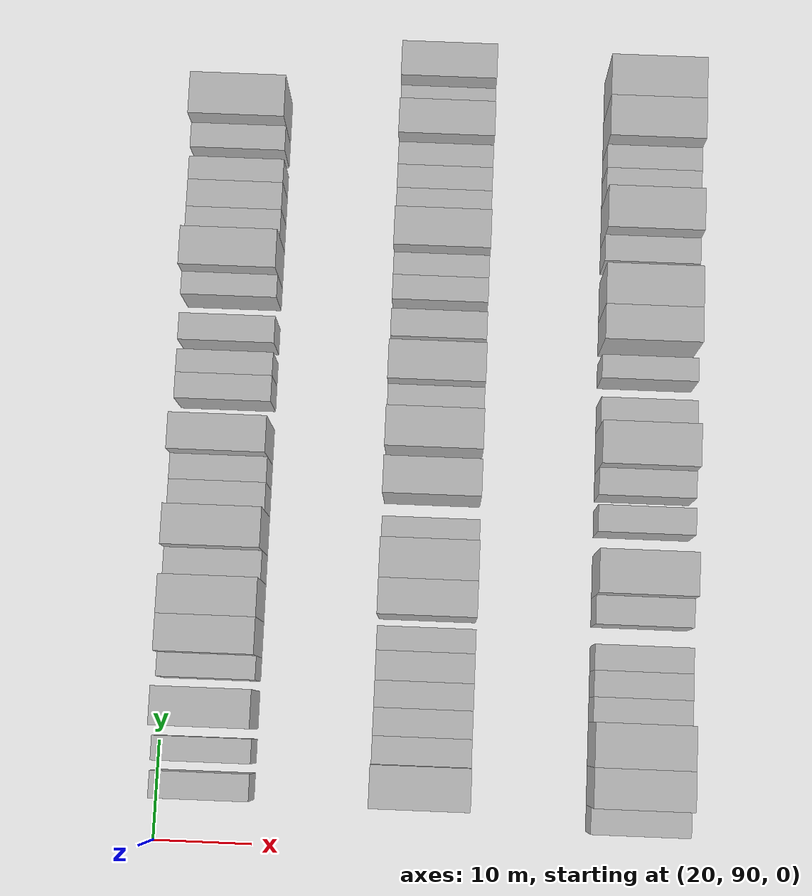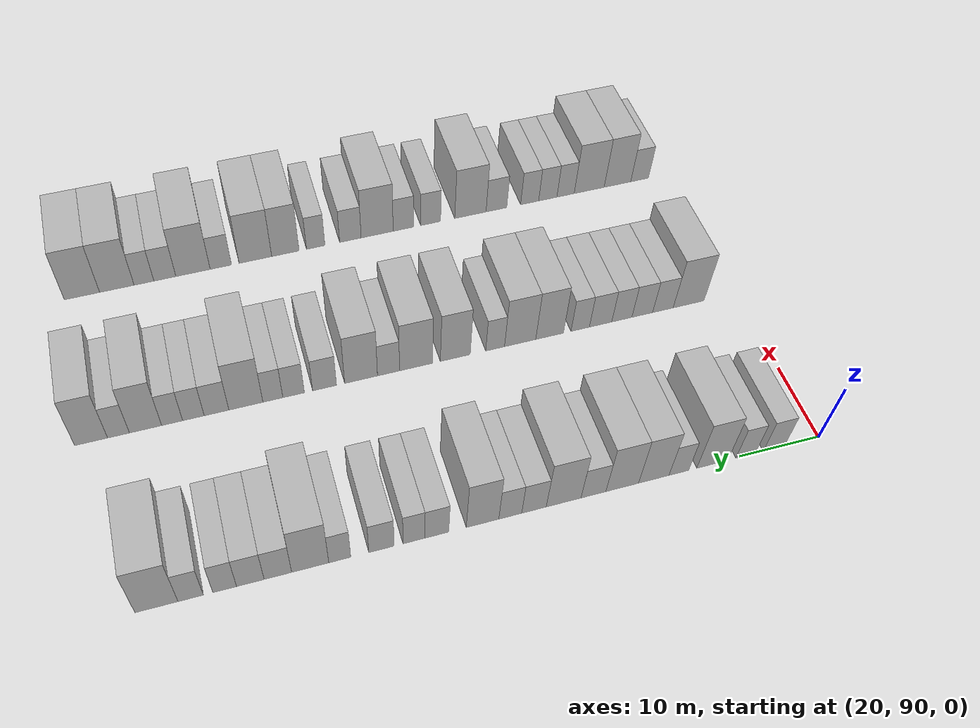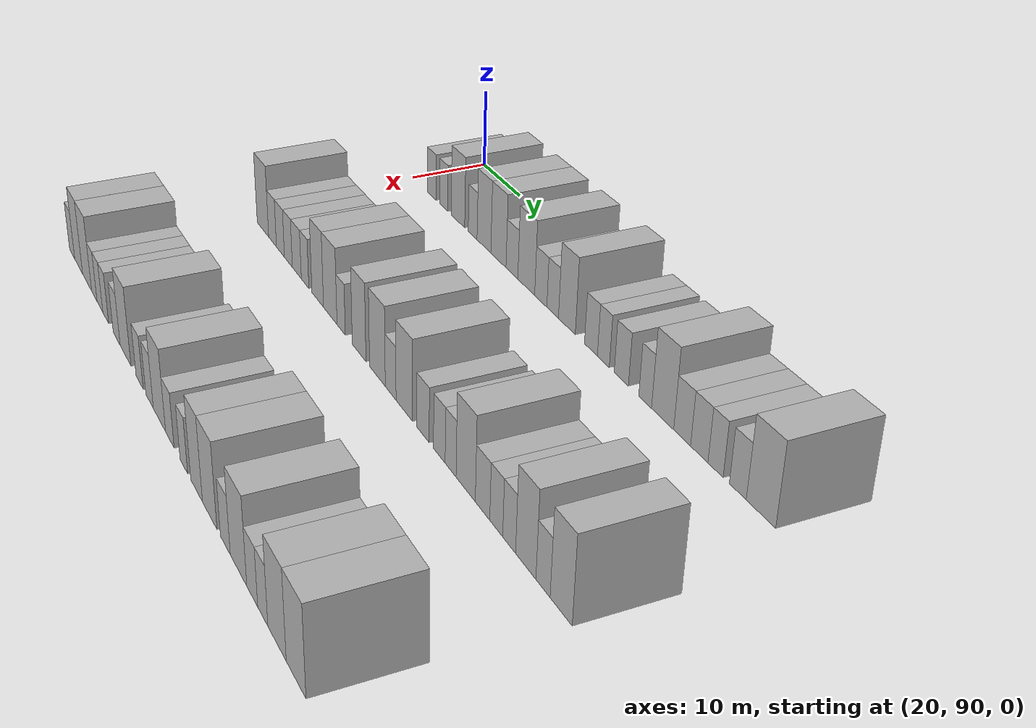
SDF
<sdf version="1.6">
 <world name="default">
  <model name="building_84">
   <static>1</static>
   <pose>25.0000 95.7551 0 0.000000 0.000000 0.000000</pose>
   <link name="link">
    <pose>0 0 3.00 0 0 0</pose>
    <collision name="collision"><geometry><box><size>10.0000 2.6965 6.0000</size></box></geometry></collision>
    <visual name="visual">
     <cast_shadows>0</cast_shadows>
     <geometry><box><size>10.0000 2.6965 6.0000</size></box></geometry>
     <material>
      <script>
       <uri>model://HANNAS_wall/materials/scripts</uri>
       <uri>model://HANNAS_wall/materials/textures</uri>
       <name>vrc/HANNAS_wall</name>
      </script>
     </material>
    </visual>
   </link>
  </model>
  <model name="building_85">
   <static>1</static>
   <pose>25.0000 99.3266 0 0.000000 0.000000 0.000000</pose>
   <link name="link">
    <pose>0 0 3.00 0 0 0</pose>
    <collision name="collision"><geometry><box><size>10.0000 2.4466 6.0000</size></box></geometry></collision>
    <visual name="visual">
     <cast_shadows>0</cast_shadows>
     <geometry><box><size>10.0000 2.4466 6.0000</size></box></geometry>
     <material>
      <script>
       <uri>model://HANNAS_wall/materials/scripts</uri>
       <uri>model://HANNAS_wall/materials/textures</uri>
       <name>vrc/HANNAS_wall</name>
      </script>
     </material>
    </visual>
   </link>
  </model>
  <model name="building_86">
   <static>1</static>
   <pose>25.0000 103.4763 0 0.000000 0.000000 0.000000</pose>
   <link name="link">
    <pose>0 0 4.50 0 0 0</pose>
    <collision name="collision"><geometry><box><size>10.0000 3.8527 9.0000</size></box></geometry></collision>
    <visual name="visual">
     <cast_shadows>0</cast_shadows>
     <geometry><box><size>10.0000 3.8527 9.0000</size></box></geometry>
     <material>
      <script>
       <uri>model://HANNAS_wall/materials/scripts</uri>
       <uri>model://HANNAS_wall/materials/textures</uri>
       <name>vrc/HANNAS_wall</name>
      </script>
     </material>
    </visual>
   </link>
  </model>
  <model name="building_87">
   <static>1</static>
   <pose>25.0000 107.6109 0 0.000000 0.000000 0.000000</pose>
   <link name="link">
    <pose>0 0 3.00 0 0 0</pose>
    <collision name="collision"><geometry><box><size>10.0000 2.4166 6.0000</size></box></geometry></collision>
    <visual name="visual">
     <cast_shadows>0</cast_shadows>
     <geometry><box><size>10.0000 2.4166 6.0000</size></box></geometry>
     <material>
      <script>
       <uri>model://HANNAS_wall/materials/scripts</uri>
       <uri>model://HANNAS_wall/materials/textures</uri>
       <name>vrc/HANNAS_wall</name>
      </script>
     </material>
    </visual>
   </link>
  </model>
  <model name="building_88">
   <static>1</static>
   <pose>25.0000 110.6749 0 0.000000 0.000000 0.000000</pose>
   <link name="link">
    <pose>0 0 4.50 0 0 0</pose>
    <collision name="collision"><geometry><box><size>10.0000 3.7113 9.0000</size></box></geometry></collision>
    <visual name="visual">
     <cast_shadows>0</cast_shadows>
     <geometry><box><size>10.0000 3.7113 9.0000</size></box></geometry>
     <material>
      <script>
       <uri>model://HANNAS_wall/materials/scripts</uri>
       <uri>model://HANNAS_wall/materials/textures</uri>
       <name>vrc/HANNAS_wall</name>
      </script>
     </material>
    </visual>
   </link>
  </model>
  <model name="building_89">
   <static>1</static>
   <pose>25.0000 114.4962 0 0.000000 0.000000 0.000000</pose>
   <link name="link">
    <pose>0 0 4.50 0 0 0</pose>
    <collision name="collision"><geometry><box><size>10.0000 3.9313 9.0000</size></box></geometry></collision>
    <visual name="visual">
     <cast_shadows>0</cast_shadows>
     <geometry><box><size>10.0000 3.9313 9.0000</size></box></geometry>
     <material>
      <script>
       <uri>model://HANNAS_wall/materials/scripts</uri>
       <uri>model://HANNAS_wall/materials/textures</uri>
       <name>vrc/HANNAS_wall</name>
      </script>
     </material>
    </visual>
   </link>
  </model>
  <model name="building_90">
   <static>1</static>
   <pose>25.0000 117.9453 0 0.000000 0.000000 0.000000</pose>
   <link name="link">
    <pose>0 0 3.00 0 0 0</pose>
    <collision name="collision"><geometry><box><size>10.0000 2.9670 6.0000</size></box></geometry></collision>
    <visual name="visual">
     <cast_shadows>0</cast_shadows>
     <geometry><box><size>10.0000 2.9670 6.0000</size></box></geometry>
     <material>
      <script>
       <uri>model://HANNAS_wall/materials/scripts</uri>
       <uri>model://HANNAS_wall/materials/textures</uri>
       <name>vrc/HANNAS_wall</name>
      </script>
     </material>
    </visual>
   </link>
  </model>
  <model name="building_91">
   <static>1</static>
   <pose>25.0000 121.4824 0 0.000000 0.000000 0.000000</pose>
   <link name="link">
    <pose>0 0 4.50 0 0 0</pose>
    <collision name="collision"><geometry><box><size>10.0000 4.1071 9.0000</size></box></geometry></collision>
    <visual name="visual">
     <cast_shadows>0</cast_shadows>
     <geometry><box><size>10.0000 4.1071 9.0000</size></box></geometry>
     <material>
      <script>
       <uri>model://HANNAS_wall/materials/scripts</uri>
       <uri>model://HANNAS_wall/materials/textures</uri>
       <name>vrc/HANNAS_wall</name>
      </script>
     </material>
    </visual>
   </link>
  </model>
  <model name="building_92">
   <static>1</static>
   <pose>25.0000 124.9711 0 0.000000 0.000000 0.000000</pose>
   <link name="link">
    <pose>0 0 3.00 0 0 0</pose>
    <collision name="collision"><geometry><box><size>10.0000 2.8704 6.0000</size></box></geometry></collision>
    <visual name="visual">
     <cast_shadows>0</cast_shadows>
     <geometry><box><size>10.0000 2.8704 6.0000</size></box></geometry>
     <material>
      <script>
       <uri>model://HANNAS_wall/materials/scripts</uri>
       <uri>model://HANNAS_wall/materials/textures</uri>
       <name>vrc/HANNAS_wall</name>
      </script>
     </material>
    </visual>
   </link>
  </model>
  <model name="building_93">
   <static>1</static>
   <pose>25.0000 127.7362 0 0.000000 0.000000 0.000000</pose>
   <link name="link">
    <pose>0 0 3.00 0 0 0</pose>
    <collision name="collision"><geometry><box><size>10.0000 2.6599 6.0000</size></box></geometry></collision>
    <visual name="visual">
     <cast_shadows>0</cast_shadows>
     <geometry><box><size>10.0000 2.6599 6.0000</size></box></geometry>
     <material>
      <script>
       <uri>model://HANNAS_wall/materials/scripts</uri>
       <uri>model://HANNAS_wall/materials/textures</uri>
       <name>vrc/HANNAS_wall</name>
      </script>
     </material>
    </visual>
   </link>
  </model>
  <model name="building_94">
   <static>1</static>
   <pose>25.0000 130.9410 0 0.000000 0.000000 0.000000</pose>
   <link name="link">
    <pose>0 0 4.50 0 0 0</pose>
    <collision name="collision"><geometry><box><size>10.0000 3.7497 9.0000</size></box></geometry></collision>
    <visual name="visual">
     <cast_shadows>0</cast_shadows>
     <geometry><box><size>10.0000 3.7497 9.0000</size></box></geometry>
     <material>
      <script>
       <uri>model://HANNAS_wall/materials/scripts</uri>
       <uri>model://HANNAS_wall/materials/textures</uri>
       <name>vrc/HANNAS_wall</name>
      </script>
     </material>
    </visual>
   </link>
  </model>
  <model name="building_95">
   <static>1</static>
   <pose>25.0000 136.1761 0 0.000000 0.000000 0.000000</pose>
   <link name="link">
    <pose>0 0 3.00 0 0 0</pose>
    <collision name="collision"><geometry><box><size>10.0000 2.7204 6.0000</size></box></geometry></collision>
    <visual name="visual">
     <cast_shadows>0</cast_shadows>
     <geometry><box><size>10.0000 2.7204 6.0000</size></box></geometry>
     <material>
      <script>
       <uri>model://HANNAS_wall/materials/scripts</uri>
       <uri>model://HANNAS_wall/materials/textures</uri>
       <name>vrc/HANNAS_wall</name>
      </script>
     </material>
    </visual>
   </link>
  </model>
  <model name="building_96">
   <static>1</static>
   <pose>25.0000 138.7613 0 0.000000 0.000000 0.000000</pose>
   <link name="link">
    <pose>0 0 3.00 0 0 0</pose>
    <collision name="collision"><geometry><box><size>10.0000 2.4500 6.0000</size></box></geometry></collision>
    <visual name="visual">
     <cast_shadows>0</cast_shadows>
     <geometry><box><size>10.0000 2.4500 6.0000</size></box></geometry>
     <material>
      <script>
       <uri>model://HANNAS_wall/materials/scripts</uri>
       <uri>model://HANNAS_wall/materials/textures</uri>
       <name>vrc/HANNAS_wall</name>
      </script>
     </material>
    </visual>
   </link>
  </model>
  <model name="building_97">
   <static>1</static>
   <pose>25.0000 142.3964 0 0.000000 0.000000 0.000000</pose>
   <link name="link">
    <pose>0 0 3.00 0 0 0</pose>
    <collision name="collision"><geometry><box><size>10.0000 2.8202 6.0000</size></box></geometry></collision>
    <visual name="visual">
     <cast_shadows>0</cast_shadows>
     <geometry><box><size>10.0000 2.8202 6.0000</size></box></geometry>
     <material>
      <script>
       <uri>model://HANNAS_wall/materials/scripts</uri>
       <uri>model://HANNAS_wall/materials/textures</uri>
       <name>vrc/HANNAS_wall</name>
      </script>
     </material>
    </visual>
   </link>
  </model>
  <model name="building_98">
   <static>1</static>
   <pose>25.0000 147.0149 0 0.000000 0.000000 0.000000</pose>
   <link name="link">
    <pose>0 0 3.00 0 0 0</pose>
    <collision name="collision"><geometry><box><size>10.0000 2.4168 6.0000</size></box></geometry></collision>
    <visual name="visual">
     <cast_shadows>0</cast_shadows>
     <geometry><box><size>10.0000 2.4168 6.0000</size></box></geometry>
     <material>
      <script>
       <uri>model://HANNAS_wall/materials/scripts</uri>
       <uri>model://HANNAS_wall/materials/textures</uri>
       <name>vrc/HANNAS_wall</name>
      </script>
     </material>
    </visual>
   </link>
  </model>
  <model name="building_99">
   <static>1</static>
   <pose>25.0000 150.2508 0 0.000000 0.000000 0.000000</pose>
   <link name="link">
    <pose>0 0 4.50 0 0 0</pose>
    <collision name="collision"><geometry><box><size>10.0000 4.0549 9.0000</size></box></geometry></collision>
    <visual name="visual">
     <cast_shadows>0</cast_shadows>
     <geometry><box><size>10.0000 4.0549 9.0000</size></box></geometry>
     <material>
      <script>
       <uri>model://HANNAS_wall/materials/scripts</uri>
       <uri>model://HANNAS_wall/materials/textures</uri>
       <name>vrc/HANNAS_wall</name>
      </script>
     </material>
    </visual>
   </link>
  </model>
  <model name="building_100">
   <static>1</static>
   <pose>25.0000 153.7672 0 0.000000 0.000000 0.000000</pose>
   <link name="link">
    <pose>0 0 3.00 0 0 0</pose>
    <collision name="collision"><geometry><box><size>10.0000 2.9780 6.0000</size></box></geometry></collision>
    <visual name="visual">
     <cast_shadows>0</cast_shadows>
     <geometry><box><size>10.0000 2.9780 6.0000</size></box></geometry>
     <material>
      <script>
       <uri>model://HANNAS_wall/materials/scripts</uri>
       <uri>model://HANNAS_wall/materials/textures</uri>
       <name>vrc/HANNAS_wall</name>
      </script>
     </material>
    </visual>
   </link>
  </model>
  <model name="building_101">
   <static>1</static>
   <pose>25.0000 156.7328 0 0.000000 0.000000 0.000000</pose>
   <link name="link">
    <pose>0 0 3.00 0 0 0</pose>
    <collision name="collision"><geometry><box><size>10.0000 2.9532 6.0000</size></box></geometry></collision>
    <visual name="visual">
     <cast_shadows>0</cast_shadows>
     <geometry><box><size>10.0000 2.9532 6.0000</size></box></geometry>
     <material>
      <script>
       <uri>model://HANNAS_wall/materials/scripts</uri>
       <uri>model://HANNAS_wall/materials/textures</uri>
       <name>vrc/HANNAS_wall</name>
      </script>
     </material>
    </visual>
   </link>
  </model>
  <model name="building_102">
   <static>1</static>
   <pose>25.0000 159.4718 0 0.000000 0.000000 0.000000</pose>
   <link name="link">
    <pose>0 0 3.00 0 0 0</pose>
    <collision name="collision"><geometry><box><size>10.0000 2.5248 6.0000</size></box></geometry></collision>
    <visual name="visual">
     <cast_shadows>0</cast_shadows>
     <geometry><box><size>10.0000 2.5248 6.0000</size></box></geometry>
     <material>
      <script>
       <uri>model://HANNAS_wall/materials/scripts</uri>
       <uri>model://HANNAS_wall/materials/textures</uri>
       <name>vrc/HANNAS_wall</name>
      </script>
     </material>
    </visual>
   </link>
  </model>
  <model name="building_103">
   <static>1</static>
   <pose>25.0000 163.0739 0 0.000000 0.000000 0.000000</pose>
   <link name="link">
    <pose>0 0 3.00 0 0 0</pose>
    <collision name="collision"><geometry><box><size>10.0000 2.6792 6.0000</size></box></geometry></collision>
    <visual name="visual">
     <cast_shadows>0</cast_shadows>
     <geometry><box><size>10.0000 2.6792 6.0000</size></box></geometry>
     <material>
      <script>
       <uri>model://HANNAS_wall/materials/scripts</uri>
       <uri>model://HANNAS_wall/materials/textures</uri>
       <name>vrc/HANNAS_wall</name>
      </script>
     </material>
    </visual>
   </link>
  </model>
  <model name="building_104">
   <static>1</static>
   <pose>25.0000 166.6587 0 0.000000 0.000000 0.000000</pose>
   <link name="link">
    <pose>0 0 4.50 0 0 0</pose>
    <collision name="collision"><geometry><box><size>10.0000 4.4905 9.0000</size></box></geometry></collision>
    <visual name="visual">
     <cast_shadows>0</cast_shadows>
     <geometry><box><size>10.0000 4.4905 9.0000</size></box></geometry>
     <material>
      <script>
       <uri>model://HANNAS_wall/materials/scripts</uri>
       <uri>model://HANNAS_wall/materials/textures</uri>
       <name>vrc/HANNAS_wall</name>
      </script>
     </material>
    </visual>
   </link>
  </model>
  <model name="building_212">
   <static>1</static>
   <pose>47.0000 96.4812 0 0.000000 0.000000 0.000000</pose>
   <link name="link">
    <pose>0 0 4.50 0 0 0</pose>
    <collision name="collision"><geometry><box><size>10.0000 4.2349 9.0000</size></box></geometry></collision>
    <visual name="visual">
     <cast_shadows>0</cast_shadows>
     <geometry><box><size>10.0000 4.2349 9.0000</size></box></geometry>
     <material>
      <script>
       <uri>model://HANNAS_wall/materials/scripts</uri>
       <uri>model://HANNAS_wall/materials/textures</uri>
       <name>vrc/HANNAS_wall</name>
      </script>
     </material>
    </visual>
   </link>
  </model>
  <model name="building_213">
   <static>1</static>
   <pose>47.0000 99.9981 0 0.000000 0.000000 0.000000</pose>
   <link name="link">
    <pose>0 0 3.00 0 0 0</pose>
    <collision name="collision"><geometry><box><size>10.0000 2.7988 6.0000</size></box></geometry></collision>
    <visual name="visual">
     <cast_shadows>0</cast_shadows>
     <geometry><box><size>10.0000 2.7988 6.0000</size></box></geometry>
     <material>
      <script>
       <uri>model://HANNAS_wall/materials/scripts</uri>
       <uri>model://HANNAS_wall/materials/textures</uri>
       <name>vrc/HANNAS_wall</name>
      </script>
     </material>
    </visual>
   </link>
  </model>
  <model name="building_214">
   <static>1</static>
   <pose>47.0000 102.7991 0 0.000000 0.000000 0.000000</pose>
   <link name="link">
    <pose>0 0 3.00 0 0 0</pose>
    <collision name="collision"><geometry><box><size>10.0000 2.8032 6.0000</size></box></geometry></collision>
    <visual name="visual">
     <cast_shadows>0</cast_shadows>
     <geometry><box><size>10.0000 2.8032 6.0000</size></box></geometry>
     <material>
      <script>
       <uri>model://HANNAS_wall/materials/scripts</uri>
       <uri>model://HANNAS_wall/materials/textures</uri>
       <name>vrc/HANNAS_wall</name>
      </script>
     </material>
    </visual>
   </link>
  </model>
  <model name="building_215">
   <static>1</static>
   <pose>47.0000 105.5547 0 0.000000 0.000000 0.000000</pose>
   <link name="link">
    <pose>0 0 3.00 0 0 0</pose>
    <collision name="collision"><geometry><box><size>10.0000 2.7080 6.0000</size></box></geometry></collision>
    <visual name="visual">
     <cast_shadows>0</cast_shadows>
     <geometry><box><size>10.0000 2.7080 6.0000</size></box></geometry>
     <material>
      <script>
       <uri>model://HANNAS_wall/materials/scripts</uri>
       <uri>model://HANNAS_wall/materials/textures</uri>
       <name>vrc/HANNAS_wall</name>
      </script>
     </material>
    </visual>
   </link>
  </model>
  <model name="building_216">
   <static>1</static>
   <pose>47.0000 108.4024 0 0.000000 0.000000 0.000000</pose>
   <link name="link">
    <pose>0 0 3.00 0 0 0</pose>
    <collision name="collision"><geometry><box><size>10.0000 2.9875 6.0000</size></box></geometry></collision>
    <visual name="visual">
     <cast_shadows>0</cast_shadows>
     <geometry><box><size>10.0000 2.9875 6.0000</size></box></geometry>
     <material>
      <script>
       <uri>model://HANNAS_wall/materials/scripts</uri>
       <uri>model://HANNAS_wall/materials/textures</uri>
       <name>vrc/HANNAS_wall</name>
      </script>
     </material>
    </visual>
   </link>
  </model>
  <model name="building_217">
   <static>1</static>
   <pose>47.0000 111.1169 0 0.000000 0.000000 0.000000</pose>
   <link name="link">
    <pose>0 0 3.00 0 0 0</pose>
    <collision name="collision"><geometry><box><size>10.0000 2.4415 6.0000</size></box></geometry></collision>
    <visual name="visual">
     <cast_shadows>0</cast_shadows>
     <geometry><box><size>10.0000 2.4415 6.0000</size></box></geometry>
     <material>
      <script>
       <uri>model://HANNAS_wall/materials/scripts</uri>
       <uri>model://HANNAS_wall/materials/textures</uri>
       <name>vrc/HANNAS_wall</name>
      </script>
     </material>
    </visual>
   </link>
  </model>
  <model name="building_218">
   <static>1</static>
   <pose>47.0000 115.1561 0 0.000000 0.000000 0.000000</pose>
   <link name="link">
    <pose>0 0 4.50 0 0 0</pose>
    <collision name="collision"><geometry><box><size>10.0000 3.6369 9.0000</size></box></geometry></collision>
    <visual name="visual">
     <cast_shadows>0</cast_shadows>
     <geometry><box><size>10.0000 3.6369 9.0000</size></box></geometry>
     <material>
      <script>
       <uri>model://HANNAS_wall/materials/scripts</uri>
       <uri>model://HANNAS_wall/materials/textures</uri>
       <name>vrc/HANNAS_wall</name>
      </script>
     </material>
    </visual>
   </link>
  </model>
  <model name="building_219">
   <static>1</static>
   <pose>47.0000 119.0085 0 0.000000 0.000000 0.000000</pose>
   <link name="link">
    <pose>0 0 4.50 0 0 0</pose>
    <collision name="collision"><geometry><box><size>10.0000 4.0679 9.0000</size></box></geometry></collision>
    <visual name="visual">
     <cast_shadows>0</cast_shadows>
     <geometry><box><size>10.0000 4.0679 9.0000</size></box></geometry>
     <material>
      <script>
       <uri>model://HANNAS_wall/materials/scripts</uri>
       <uri>model://HANNAS_wall/materials/textures</uri>
       <name>vrc/HANNAS_wall</name>
      </script>
     </material>
    </visual>
   </link>
  </model>
  <model name="building_220">
   <static>1</static>
   <pose>47.0000 122.2550 0 0.000000 0.000000 0.000000</pose>
   <link name="link">
    <pose>0 0 3.00 0 0 0</pose>
    <collision name="collision"><geometry><box><size>10.0000 2.4251 6.0000</size></box></geometry></collision>
    <visual name="visual">
     <cast_shadows>0</cast_shadows>
     <geometry><box><size>10.0000 2.4251 6.0000</size></box></geometry>
     <material>
      <script>
       <uri>model://HANNAS_wall/materials/scripts</uri>
       <uri>model://HANNAS_wall/materials/textures</uri>
       <name>vrc/HANNAS_wall</name>
      </script>
     </material>
    </visual>
   </link>
  </model>
  <model name="building_221">
   <static>1</static>
   <pose>47.0000 127.3715 0 0.000000 0.000000 0.000000</pose>
   <link name="link">
    <pose>0 0 4.50 0 0 0</pose>
    <collision name="collision"><geometry><box><size>10.0000 3.8080 9.0000</size></box></geometry></collision>
    <visual name="visual">
     <cast_shadows>0</cast_shadows>
     <geometry><box><size>10.0000 3.8080 9.0000</size></box></geometry>
     <material>
      <script>
       <uri>model://HANNAS_wall/materials/scripts</uri>
       <uri>model://HANNAS_wall/materials/textures</uri>
       <name>vrc/HANNAS_wall</name>
      </script>
     </material>
    </visual>
   </link>
  </model>
  <model name="building_222">
   <static>1</static>
   <pose>47.0000 132.3498 0 0.000000 0.000000 0.000000</pose>
   <link name="link">
    <pose>0 0 4.50 0 0 0</pose>
    <collision name="collision"><geometry><box><size>10.0000 4.1486 9.0000</size></box></geometry></collision>
    <visual name="visual">
     <cast_shadows>0</cast_shadows>
     <geometry><box><size>10.0000 4.1486 9.0000</size></box></geometry>
     <material>
      <script>
       <uri>model://HANNAS_wall/materials/scripts</uri>
       <uri>model://HANNAS_wall/materials/textures</uri>
       <name>vrc/HANNAS_wall</name>
      </script>
     </material>
    </visual>
   </link>
  </model>
  <model name="building_223">
   <static>1</static>
   <pose>47.0000 135.7993 0 0.000000 0.000000 0.000000</pose>
   <link name="link">
    <pose>0 0 3.00 0 0 0</pose>
    <collision name="collision"><geometry><box><size>10.0000 2.7504 6.0000</size></box></geometry></collision>
    <visual name="visual">
     <cast_shadows>0</cast_shadows>
     <geometry><box><size>10.0000 2.7504 6.0000</size></box></geometry>
     <material>
      <script>
       <uri>model://HANNAS_wall/materials/scripts</uri>
       <uri>model://HANNAS_wall/materials/textures</uri>
       <name>vrc/HANNAS_wall</name>
      </script>
     </material>
    </visual>
   </link>
  </model>
  <model name="building_224">
   <static>1</static>
   <pose>47.0000 139.2061 0 0.000000 0.000000 0.000000</pose>
   <link name="link">
    <pose>0 0 4.50 0 0 0</pose>
    <collision name="collision"><geometry><box><size>10.0000 4.0631 9.0000</size></box></geometry></collision>
    <visual name="visual">
     <cast_shadows>0</cast_shadows>
     <geometry><box><size>10.0000 4.0631 9.0000</size></box></geometry>
     <material>
      <script>
       <uri>model://HANNAS_wall/materials/scripts</uri>
       <uri>model://HANNAS_wall/materials/textures</uri>
       <name>vrc/HANNAS_wall</name>
      </script>
     </material>
    </visual>
   </link>
  </model>
  <model name="building_225">
   <static>1</static>
   <pose>47.0000 143.7013 0 0.000000 0.000000 0.000000</pose>
   <link name="link">
    <pose>0 0 3.00 0 0 0</pose>
    <collision name="collision"><geometry><box><size>10.0000 2.9274 6.0000</size></box></geometry></collision>
    <visual name="visual">
     <cast_shadows>0</cast_shadows>
     <geometry><box><size>10.0000 2.9274 6.0000</size></box></geometry>
     <material>
      <script>
       <uri>model://HANNAS_wall/materials/scripts</uri>
       <uri>model://HANNAS_wall/materials/textures</uri>
       <name>vrc/HANNAS_wall</name>
      </script>
     </material>
    </visual>
   </link>
  </model>
  <model name="building_226">
   <static>1</static>
   <pose>47.0000 147.4741 0 0.000000 0.000000 0.000000</pose>
   <link name="link">
    <pose>0 0 3.00 0 0 0</pose>
    <collision name="collision"><geometry><box><size>10.0000 2.6183 6.0000</size></box></geometry></collision>
    <visual name="visual">
     <cast_shadows>0</cast_shadows>
     <geometry><box><size>10.0000 2.6183 6.0000</size></box></geometry>
     <material>
      <script>
       <uri>model://HANNAS_wall/materials/scripts</uri>
       <uri>model://HANNAS_wall/materials/textures</uri>
       <name>vrc/HANNAS_wall</name>
      </script>
     </material>
    </visual>
   </link>
  </model>
  <model name="building_227">
   <static>1</static>
   <pose>47.0000 149.9846 0 0.000000 0.000000 0.000000</pose>
   <link name="link">
    <pose>0 0 3.00 0 0 0</pose>
    <collision name="collision"><geometry><box><size>10.0000 2.4026 6.0000</size></box></geometry></collision>
    <visual name="visual">
     <cast_shadows>0</cast_shadows>
     <geometry><box><size>10.0000 2.4026 6.0000</size></box></geometry>
     <material>
      <script>
       <uri>model://HANNAS_wall/materials/scripts</uri>
       <uri>model://HANNAS_wall/materials/textures</uri>
       <name>vrc/HANNAS_wall</name>
      </script>
     </material>
    </visual>
   </link>
  </model>
  <model name="building_228">
   <static>1</static>
   <pose>47.0000 153.2193 0 0.000000 0.000000 0.000000</pose>
   <link name="link">
    <pose>0 0 4.50 0 0 0</pose>
    <collision name="collision"><geometry><box><size>10.0000 4.0669 9.0000</size></box></geometry></collision>
    <visual name="visual">
     <cast_shadows>0</cast_shadows>
     <geometry><box><size>10.0000 4.0669 9.0000</size></box></geometry>
     <material>
      <script>
       <uri>model://HANNAS_wall/materials/scripts</uri>
       <uri>model://HANNAS_wall/materials/textures</uri>
       <name>vrc/HANNAS_wall</name>
      </script>
     </material>
    </visual>
   </link>
  </model>
  <model name="building_229">
   <static>1</static>
   <pose>47.0000 156.7164 0 0.000000 0.000000 0.000000</pose>
   <link name="link">
    <pose>0 0 3.00 0 0 0</pose>
    <collision name="collision"><geometry><box><size>10.0000 2.9271 6.0000</size></box></geometry></collision>
    <visual name="visual">
     <cast_shadows>0</cast_shadows>
     <geometry><box><size>10.0000 2.9271 6.0000</size></box></geometry>
     <material>
      <script>
       <uri>model://HANNAS_wall/materials/scripts</uri>
       <uri>model://HANNAS_wall/materials/textures</uri>
       <name>vrc/HANNAS_wall</name>
      </script>
     </material>
    </visual>
   </link>
  </model>
  <model name="building_230">
   <static>1</static>
   <pose>47.0000 159.4494 0 0.000000 0.000000 0.000000</pose>
   <link name="link">
    <pose>0 0 3.00 0 0 0</pose>
    <collision name="collision"><geometry><box><size>10.0000 2.5389 6.0000</size></box></geometry></collision>
    <visual name="visual">
     <cast_shadows>0</cast_shadows>
     <geometry><box><size>10.0000 2.5389 6.0000</size></box></geometry>
     <material>
      <script>
       <uri>model://HANNAS_wall/materials/scripts</uri>
       <uri>model://HANNAS_wall/materials/textures</uri>
       <name>vrc/HANNAS_wall</name>
      </script>
     </material>
    </visual>
   </link>
  </model>
  <model name="building_231">
   <static>1</static>
   <pose>47.0000 161.9481 0 0.000000 0.000000 0.000000</pose>
   <link name="link">
    <pose>0 0 3.00 0 0 0</pose>
    <collision name="collision"><geometry><box><size>10.0000 2.4585 6.0000</size></box></geometry></collision>
    <visual name="visual">
     <cast_shadows>0</cast_shadows>
     <geometry><box><size>10.0000 2.4585 6.0000</size></box></geometry>
     <material>
      <script>
       <uri>model://HANNAS_wall/materials/scripts</uri>
       <uri>model://HANNAS_wall/materials/textures</uri>
       <name>vrc/HANNAS_wall</name>
      </script>
     </material>
    </visual>
   </link>
  </model>
  <model name="building_232">
   <static>1</static>
   <pose>47.0000 165.0486 0 0.000000 0.000000 0.000000</pose>
   <link name="link">
    <pose>0 0 4.50 0 0 0</pose>
    <collision name="collision"><geometry><box><size>10.0000 3.7426 9.0000</size></box></geometry></collision>
    <visual name="visual">
     <cast_shadows>0</cast_shadows>
     <geometry><box><size>10.0000 3.7426 9.0000</size></box></geometry>
     <material>
      <script>
       <uri>model://HANNAS_wall/materials/scripts</uri>
       <uri>model://HANNAS_wall/materials/textures</uri>
       <name>vrc/HANNAS_wall</name>
      </script>
     </material>
    </visual>
   </link>
  </model>
  <model name="building_233">
   <static>1</static>
   <pose>47.0000 168.1761 0 0.000000 0.000000 0.000000</pose>
   <link name="link">
    <pose>0 0 3.00 0 0 0</pose>
    <collision name="collision"><geometry><box><size>10.0000 2.5123 6.0000</size></box></geometry></collision>
    <visual name="visual">
     <cast_shadows>0</cast_shadows>
     <geometry><box><size>10.0000 2.5123 6.0000</size></box></geometry>
     <material>
      <script>
       <uri>model://HANNAS_wall/materials/scripts</uri>
       <uri>model://HANNAS_wall/materials/textures</uri>
       <name>vrc/HANNAS_wall</name>
      </script>
     </material>
    </visual>
   </link>
  </model>
  <model name="building_234">
   <static>1</static>
   <pose>47.0000 171.3132 0 0.000000 0.000000 0.000000</pose>
   <link name="link">
    <pose>0 0 4.50 0 0 0</pose>
    <collision name="collision"><geometry><box><size>10.0000 3.7620 9.0000</size></box></geometry></collision>
    <visual name="visual">
     <cast_shadows>0</cast_shadows>
     <geometry><box><size>10.0000 3.7620 9.0000</size></box></geometry>
     <material>
      <script>
       <uri>model://HANNAS_wall/materials/scripts</uri>
       <uri>model://HANNAS_wall/materials/textures</uri>
       <name>vrc/HANNAS_wall</name>
      </script>
     </material>
    </visual>
   </link>
  </model>
  <model name="building_348">
   <static>1</static>
   <pose>69.0000 93.9272 0 0.000000 0.000000 0.000000</pose>
   <link name="link">
    <pose>0 0 3.00 0 0 0</pose>
    <collision name="collision"><geometry><box><size>10.0000 2.6423 6.0000</size></box></geometry></collision>
    <visual name="visual">
     <cast_shadows>0</cast_shadows>
     <geometry><box><size>10.0000 2.6423 6.0000</size></box></geometry>
     <material>
      <script>
       <uri>model://HANNAS_wall/materials/scripts</uri>
       <uri>model://HANNAS_wall/materials/textures</uri>
       <name>vrc/HANNAS_wall</name>
      </script>
     </material>
    </visual>
   </link>
  </model>
  <model name="building_349">
   <static>1</static>
   <pose>69.0000 97.2224 0 0.000000 0.000000 0.000000</pose>
   <link name="link">
    <pose>0 0 4.50 0 0 0</pose>
    <collision name="collision"><geometry><box><size>10.0000 3.9481 9.0000</size></box></geometry></collision>
    <visual name="visual">
     <cast_shadows>0</cast_shadows>
     <geometry><box><size>10.0000 3.9481 9.0000</size></box></geometry>
     <material>
      <script>
       <uri>model://HANNAS_wall/materials/scripts</uri>
       <uri>model://HANNAS_wall/materials/textures</uri>
       <name>vrc/HANNAS_wall</name>
      </script>
     </material>
    </visual>
   </link>
  </model>
  <model name="building_350">
   <static>1</static>
   <pose>69.0000 101.3951 0 0.000000 0.000000 0.000000</pose>
   <link name="link">
    <pose>0 0 4.50 0 0 0</pose>
    <collision name="collision"><geometry><box><size>10.0000 4.3972 9.0000</size></box></geometry></collision>
    <visual name="visual">
     <cast_shadows>0</cast_shadows>
     <geometry><box><size>10.0000 4.3972 9.0000</size></box></geometry>
     <material>
      <script>
       <uri>model://HANNAS_wall/materials/scripts</uri>
       <uri>model://HANNAS_wall/materials/textures</uri>
       <name>vrc/HANNAS_wall</name>
      </script>
     </material>
    </visual>
   </link>
  </model>
  <model name="building_351">
   <static>1</static>
   <pose>69.0000 104.8547 0 0.000000 0.000000 0.000000</pose>
   <link name="link">
    <pose>0 0 3.00 0 0 0</pose>
    <collision name="collision"><geometry><box><size>10.0000 2.5221 6.0000</size></box></geometry></collision>
    <visual name="visual">
     <cast_shadows>0</cast_shadows>
     <geometry><box><size>10.0000 2.5221 6.0000</size></box></geometry>
     <material>
      <script>
       <uri>model://HANNAS_wall/materials/scripts</uri>
       <uri>model://HANNAS_wall/materials/textures</uri>
       <name>vrc/HANNAS_wall</name>
      </script>
     </material>
    </visual>
   </link>
  </model>
  <model name="building_352">
   <static>1</static>
   <pose>69.0000 107.4409 0 0.000000 0.000000 0.000000</pose>
   <link name="link">
    <pose>0 0 3.00 0 0 0</pose>
    <collision name="collision"><geometry><box><size>10.0000 2.6502 6.0000</size></box></geometry></collision>
    <visual name="visual">
     <cast_shadows>0</cast_shadows>
     <geometry><box><size>10.0000 2.6502 6.0000</size></box></geometry>
     <material>
      <script>
       <uri>model://HANNAS_wall/materials/scripts</uri>
       <uri>model://HANNAS_wall/materials/textures</uri>
       <name>vrc/HANNAS_wall</name>
      </script>
     </material>
    </visual>
   </link>
  </model>
  <model name="building_353">
   <static>1</static>
   <pose>69.0000 110.0659 0 0.000000 0.000000 0.000000</pose>
   <link name="link">
    <pose>0 0 3.00 0 0 0</pose>
    <collision name="collision"><geometry><box><size>10.0000 2.5997 6.0000</size></box></geometry></collision>
    <visual name="visual">
     <cast_shadows>0</cast_shadows>
     <geometry><box><size>10.0000 2.5997 6.0000</size></box></geometry>
     <material>
      <script>
       <uri>model://HANNAS_wall/materials/scripts</uri>
       <uri>model://HANNAS_wall/materials/textures</uri>
       <name>vrc/HANNAS_wall</name>
      </script>
     </material>
    </visual>
   </link>
  </model>
  <model name="building_354">
   <static>1</static>
   <pose>69.0000 114.8386 0 0.000000 0.000000 0.000000</pose>
   <link name="link">
    <pose>0 0 3.00 0 0 0</pose>
    <collision name="collision"><geometry><box><size>10.0000 2.9458 6.0000</size></box></geometry></collision>
    <visual name="visual">
     <cast_shadows>0</cast_shadows>
     <geometry><box><size>10.0000 2.9458 6.0000</size></box></geometry>
     <material>
      <script>
       <uri>model://HANNAS_wall/materials/scripts</uri>
       <uri>model://HANNAS_wall/materials/textures</uri>
       <name>vrc/HANNAS_wall</name>
      </script>
     </material>
    </visual>
   </link>
  </model>
  <model name="building_355">
   <static>1</static>
   <pose>69.0000 118.5300 0 0.000000 0.000000 0.000000</pose>
   <link name="link">
    <pose>0 0 4.50 0 0 0</pose>
    <collision name="collision"><geometry><box><size>10.0000 4.4369 9.0000</size></box></geometry></collision>
    <visual name="visual">
     <cast_shadows>0</cast_shadows>
     <geometry><box><size>10.0000 4.4369 9.0000</size></box></geometry>
     <material>
      <script>
       <uri>model://HANNAS_wall/materials/scripts</uri>
       <uri>model://HANNAS_wall/materials/textures</uri>
       <name>vrc/HANNAS_wall</name>
      </script>
     </material>
    </visual>
   </link>
  </model>
  <model name="building_356">
   <static>1</static>
   <pose>69.0000 124.1354 0 0.000000 0.000000 0.000000</pose>
   <link name="link">
    <pose>0 0 3.00 0 0 0</pose>
    <collision name="collision"><geometry><box><size>10.0000 2.7739 6.0000</size></box></geometry></collision>
    <visual name="visual">
     <cast_shadows>0</cast_shadows>
     <geometry><box><size>10.0000 2.7739 6.0000</size></box></geometry>
     <material>
      <script>
       <uri>model://HANNAS_wall/materials/scripts</uri>
       <uri>model://HANNAS_wall/materials/textures</uri>
       <name>vrc/HANNAS_wall</name>
      </script>
     </material>
    </visual>
   </link>
  </model>
  <model name="building_357">
   <static>1</static>
   <pose>69.0000 127.9337 0 0.000000 0.000000 0.000000</pose>
   <link name="link">
    <pose>0 0 3.00 0 0 0</pose>
    <collision name="collision"><geometry><box><size>10.0000 2.8227 6.0000</size></box></geometry></collision>
    <visual name="visual">
     <cast_shadows>0</cast_shadows>
     <geometry><box><size>10.0000 2.8227 6.0000</size></box></geometry>
     <material>
      <script>
       <uri>model://HANNAS_wall/materials/scripts</uri>
       <uri>model://HANNAS_wall/materials/textures</uri>
       <name>vrc/HANNAS_wall</name>
      </script>
     </material>
    </visual>
   </link>
  </model>
  <model name="building_358">
   <static>1</static>
   <pose>69.0000 131.5459 0 0.000000 0.000000 0.000000</pose>
   <link name="link">
    <pose>0 0 4.50 0 0 0</pose>
    <collision name="collision"><geometry><box><size>10.0000 4.4017 9.0000</size></box></geometry></collision>
    <visual name="visual">
     <cast_shadows>0</cast_shadows>
     <geometry><box><size>10.0000 4.4017 9.0000</size></box></geometry>
     <material>
      <script>
       <uri>model://HANNAS_wall/materials/scripts</uri>
       <uri>model://HANNAS_wall/materials/textures</uri>
       <name>vrc/HANNAS_wall</name>
      </script>
     </material>
    </visual>
   </link>
  </model>
  <model name="building_359">
   <static>1</static>
   <pose>69.0000 135.2118 0 0.000000 0.000000 0.000000</pose>
   <link name="link">
    <pose>0 0 3.00 0 0 0</pose>
    <collision name="collision"><geometry><box><size>10.0000 2.9301 6.0000</size></box></geometry></collision>
    <visual name="visual">
     <cast_shadows>0</cast_shadows>
     <geometry><box><size>10.0000 2.9301 6.0000</size></box></geometry>
     <material>
      <script>
       <uri>model://HANNAS_wall/materials/scripts</uri>
       <uri>model://HANNAS_wall/materials/textures</uri>
       <name>vrc/HANNAS_wall</name>
      </script>
     </material>
    </visual>
   </link>
  </model>
  <model name="building_360">
   <static>1</static>
   <pose>69.0000 139.9172 0 0.000000 0.000000 0.000000</pose>
   <link name="link">
    <pose>0 0 3.00 0 0 0</pose>
    <collision name="collision"><geometry><box><size>10.0000 2.4806 6.0000</size></box></geometry></collision>
    <visual name="visual">
     <cast_shadows>0</cast_shadows>
     <geometry><box><size>10.0000 2.4806 6.0000</size></box></geometry>
     <material>
      <script>
       <uri>model://HANNAS_wall/materials/scripts</uri>
       <uri>model://HANNAS_wall/materials/textures</uri>
       <name>vrc/HANNAS_wall</name>
      </script>
     </material>
    </visual>
   </link>
  </model>
  <model name="building_361">
   <static>1</static>
   <pose>69.0000 143.9860 0 0.000000 0.000000 0.000000</pose>
   <link name="link">
    <pose>0 0 4.50 0 0 0</pose>
    <collision name="collision"><geometry><box><size>10.0000 3.6571 9.0000</size></box></geometry></collision>
    <visual name="visual">
     <cast_shadows>0</cast_shadows>
     <geometry><box><size>10.0000 3.6571 9.0000</size></box></geometry>
     <material>
      <script>
       <uri>model://HANNAS_wall/materials/scripts</uri>
       <uri>model://HANNAS_wall/materials/textures</uri>
       <name>vrc/HANNAS_wall</name>
      </script>
     </material>
    </visual>
   </link>
  </model>
  <model name="building_362">
   <static>1</static>
   <pose>69.0000 147.9798 0 0.000000 0.000000 0.000000</pose>
   <link name="link">
    <pose>0 0 4.50 0 0 0</pose>
    <collision name="collision"><geometry><box><size>10.0000 4.3304 9.0000</size></box></geometry></collision>
    <visual name="visual">
     <cast_shadows>0</cast_shadows>
     <geometry><box><size>10.0000 4.3304 9.0000</size></box></geometry>
     <material>
      <script>
       <uri>model://HANNAS_wall/materials/scripts</uri>
       <uri>model://HANNAS_wall/materials/textures</uri>
       <name>vrc/HANNAS_wall</name>
      </script>
     </material>
    </visual>
   </link>
  </model>
  <model name="building_363">
   <static>1</static>
   <pose>69.0000 152.5403 0 0.000000 0.000000 0.000000</pose>
   <link name="link">
    <pose>0 0 3.00 0 0 0</pose>
    <collision name="collision"><geometry><box><size>10.0000 2.7907 6.0000</size></box></geometry></collision>
    <visual name="visual">
     <cast_shadows>0</cast_shadows>
     <geometry><box><size>10.0000 2.7907 6.0000</size></box></geometry>
     <material>
      <script>
       <uri>model://HANNAS_wall/materials/scripts</uri>
       <uri>model://HANNAS_wall/materials/textures</uri>
       <name>vrc/HANNAS_wall</name>
      </script>
     </material>
    </visual>
   </link>
  </model>
  <model name="building_364">
   <static>1</static>
   <pose>69.0000 156.1687 0 0.000000 0.000000 0.000000</pose>
   <link name="link">
    <pose>0 0 4.50 0 0 0</pose>
    <collision name="collision"><geometry><box><size>10.0000 4.4661 9.0000</size></box></geometry></collision>
    <visual name="visual">
     <cast_shadows>0</cast_shadows>
     <geometry><box><size>10.0000 4.4661 9.0000</size></box></geometry>
     <material>
      <script>
       <uri>model://HANNAS_wall/materials/scripts</uri>
       <uri>model://HANNAS_wall/materials/textures</uri>
       <name>vrc/HANNAS_wall</name>
      </script>
     </material>
    </visual>
   </link>
  </model>
  <model name="building_365">
   <static>1</static>
   <pose>69.0000 159.8194 0 0.000000 0.000000 0.000000</pose>
   <link name="link">
    <pose>0 0 3.00 0 0 0</pose>
    <collision name="collision"><geometry><box><size>10.0000 2.8352 6.0000</size></box></geometry></collision>
    <visual name="visual">
     <cast_shadows>0</cast_shadows>
     <geometry><box><size>10.0000 2.8352 6.0000</size></box></geometry>
     <material>
      <script>
       <uri>model://HANNAS_wall/materials/scripts</uri>
       <uri>model://HANNAS_wall/materials/textures</uri>
       <name>vrc/HANNAS_wall</name>
      </script>
     </material>
    </visual>
   </link>
  </model>
  <model name="building_366">
   <static>1</static>
   <pose>69.0000 162.5033 0 0.000000 0.000000 0.000000</pose>
   <link name="link">
    <pose>0 0 3.00 0 0 0</pose>
    <collision name="collision"><geometry><box><size>10.0000 2.5326 6.0000</size></box></geometry></collision>
    <visual name="visual">
     <cast_shadows>0</cast_shadows>
     <geometry><box><size>10.0000 2.5326 6.0000</size></box></geometry>
     <material>
      <script>
       <uri>model://HANNAS_wall/materials/scripts</uri>
       <uri>model://HANNAS_wall/materials/textures</uri>
       <name>vrc/HANNAS_wall</name>
      </script>
     </material>
    </visual>
   </link>
  </model>
  <model name="building_367">
   <static>1</static>
   <pose>69.0000 165.9645 0 0.000000 0.000000 0.000000</pose>
   <link name="link">
    <pose>0 0 4.50 0 0 0</pose>
    <collision name="collision"><geometry><box><size>10.0000 4.3899 9.0000</size></box></geometry></collision>
    <visual name="visual">
     <cast_shadows>0</cast_shadows>
     <geometry><box><size>10.0000 4.3899 9.0000</size></box></geometry>
     <material>
      <script>
       <uri>model://HANNAS_wall/materials/scripts</uri>
       <uri>model://HANNAS_wall/materials/textures</uri>
       <name>vrc/HANNAS_wall</name>
      </script>
     </material>
    </visual>
   </link>
  </model>
  <model name="building_368">
   <static>1</static>
   <pose>69.0000 170.3820 0 0.000000 0.000000 0.000000</pose>
   <link name="link">
    <pose>0 0 4.50 0 0 0</pose>
    <collision name="collision"><geometry><box><size>10.0000 4.4450 9.0000</size></box></geometry></collision>
    <visual name="visual">
     <cast_shadows>0</cast_shadows>
     <geometry><box><size>10.0000 4.4450 9.0000</size></box></geometry>
     <material>
      <script>
       <uri>model://HANNAS_wall/materials/scripts</uri>
       <uri>model://HANNAS_wall/materials/textures</uri>
       <name>vrc/HANNAS_wall</name>
      </script>
     </material>
    </visual>
   </link>
  </model>
 </world>
</sdf>
